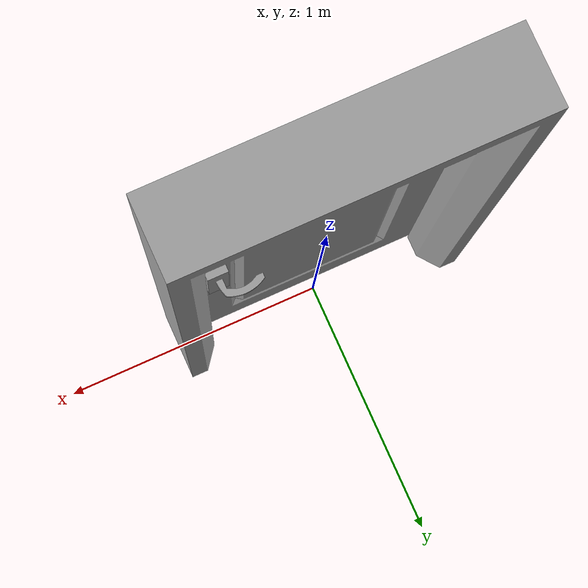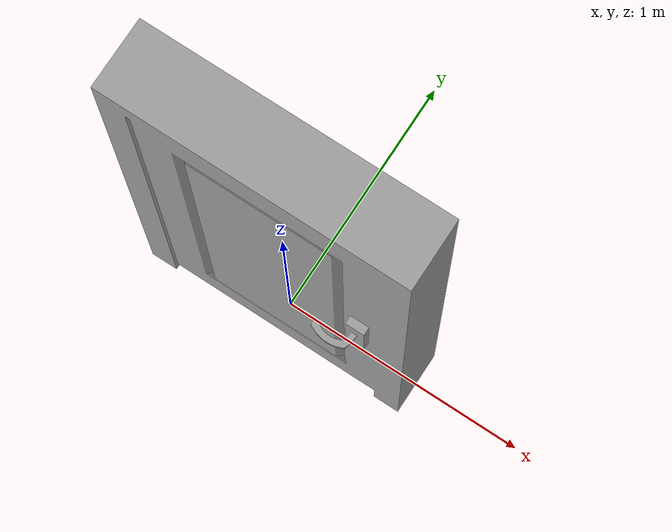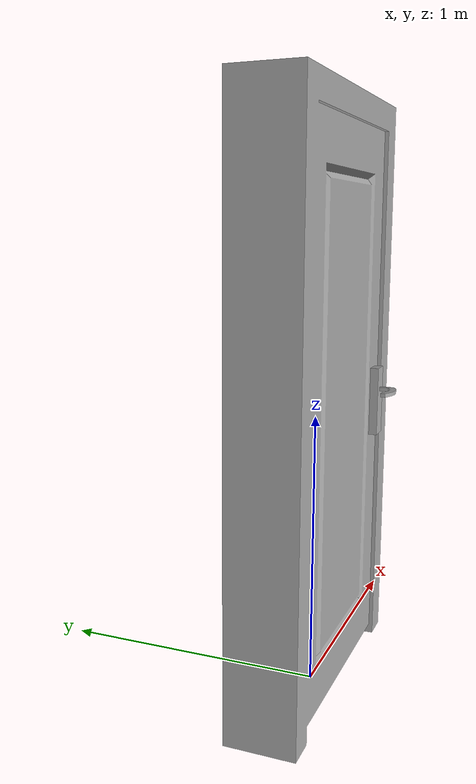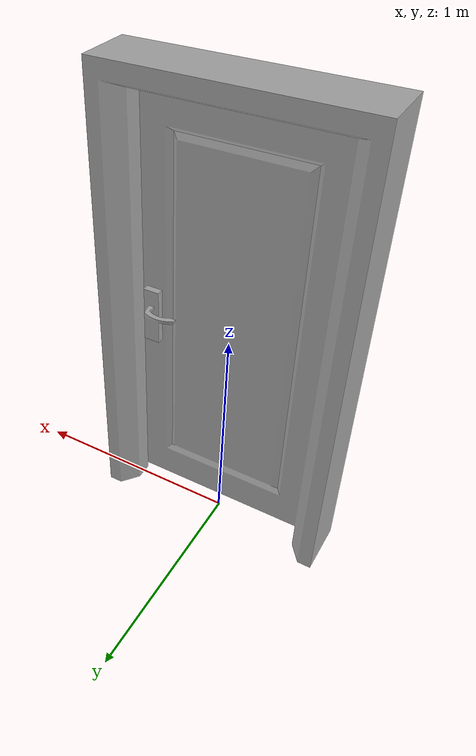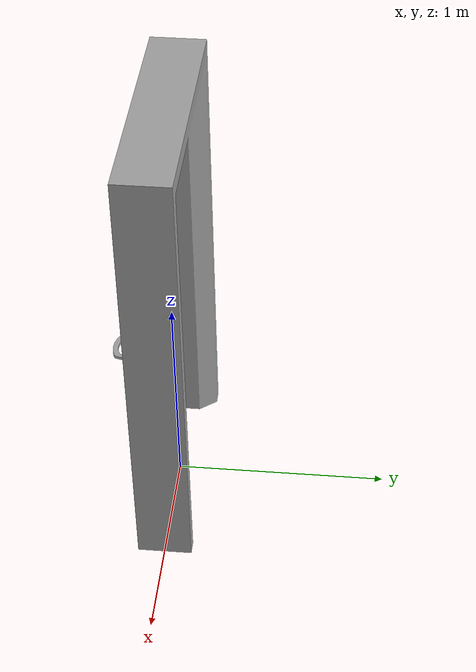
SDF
<?xml version='1.0'?>
<sdf version='1.6'>
  <model name='door_3d'>
    <link name='link_1'>
        <visual name='visual'>
        <pose frame=''>0 0 0 0 -0 0</pose>
        <geometry>
          <mesh>
            <uri>model://door_3d/meshes/door_v2_door.dae</uri>
            <scale>1 1 1</scale>
          </mesh>
        </geometry>
       	<material>
          <script>
            <uri>model://door_3d/materials/scripts</uri>
            <uri>model://door_3d/materials/textures</uri>
            <name>door_3d</name>
          </script>
        </material>
        <cast_shadows>1</cast_shadows>
        <transparency>0</transparency>
      </visual>
      <collision name='collision'>
        <laser_retro>0</laser_retro>
        <max_contacts>10</max_contacts>
        <pose frame=''>0 0 0 0 -0 0</pose>
        <geometry>
          <mesh>
            <uri>model://door_3d/meshes/door_v2_door.dae</uri>
            <scale>1 1 1</scale>
          </mesh>
        </geometry>
       </collision>
    </link>
    <link name='link_2'>
         <visual name='visual'>
        <pose frame=''>0 0 0 0 -0 0</pose>
        <geometry>
          <mesh>
            <uri>model://door_3d/meshes/door_v2_handle.dae</uri>
            <scale>1 1 1</scale>
          </mesh>
        </geometry>
           	<material>
          <script>
            <uri>model://door_3d/materials/scripts</uri>
            <uri>model://door_3d/materials/textures</uri>
            <name>door_handle</name>
          </script>
        </material>
        <cast_shadows>1</cast_shadows>
        <transparency>0</transparency>
      </visual>
      <collision name='collision'>
        <laser_retro>0</laser_retro>
        <max_contacts>10</max_contacts>
        <pose frame=''>0 0 0 0 -0 0</pose>
        <geometry>
          <mesh>
            <uri>model://door_3d/meshes/door_v2_handle.dae</uri>
            <scale>1 1 1</scale>
          </mesh>
        </geometry>
        </collision>
    </link>
    <static>1</static>
    <allow_auto_disable>1</allow_auto_disable>
  </model>
</sdf>
